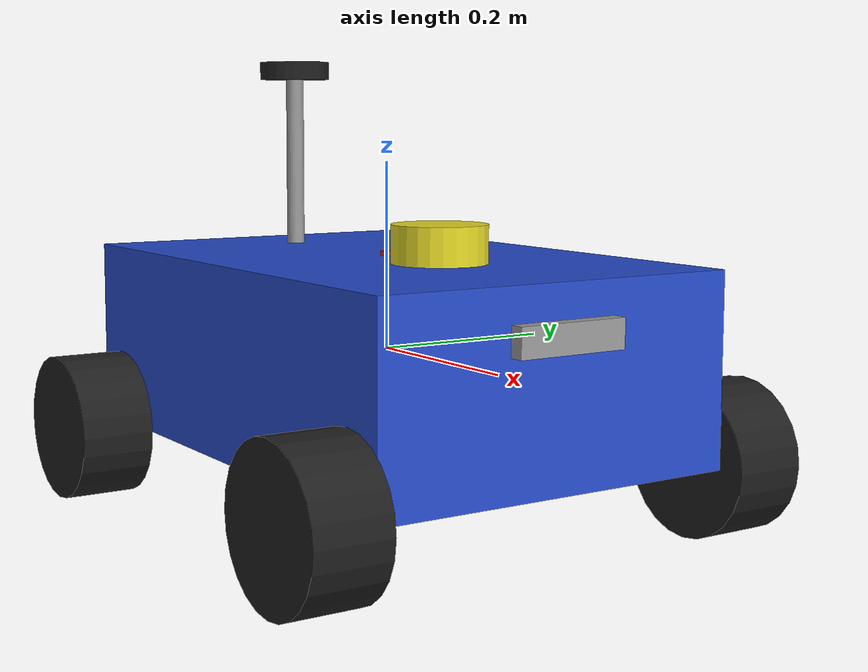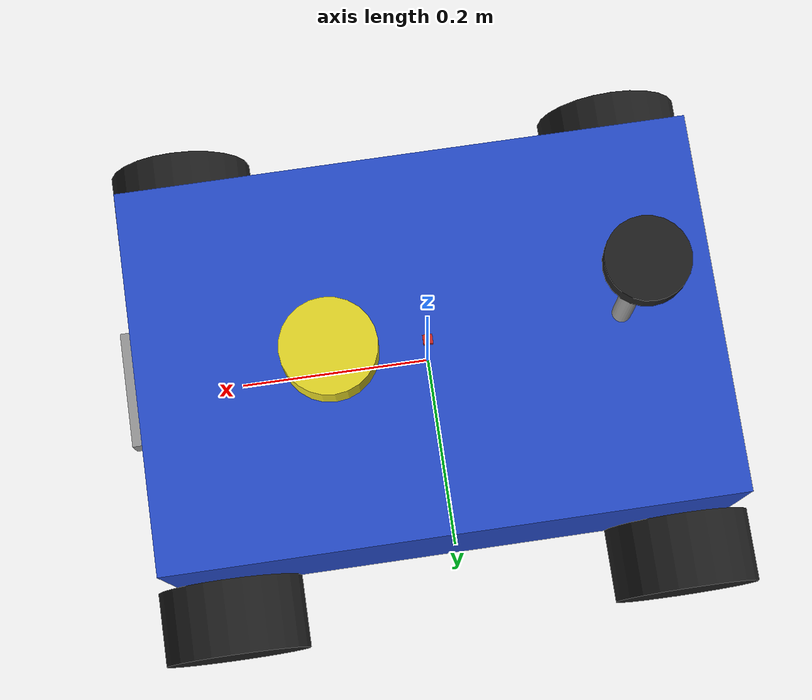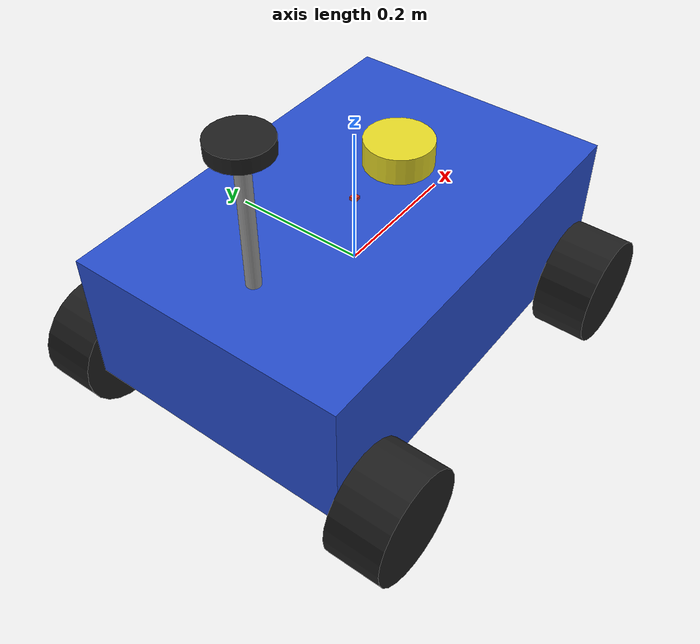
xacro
<?xml version="1.0"?>
<robot name="simple_rover" xmlns:xacro="http://www.ros.org/wiki/xacro">

  <xacro:include filename="robot.gazebo.xacro" />

  <!--Body-->

    <link name="base_link">
      <visual>
        <geometry><box size="0.6 0.4 0.2"/></geometry>
      </visual>
      <collision>
        <geometry><box size="0.6 0.4 0.2"/></geometry>
      </collision>
      <inertial>
        <mass value="20"/>
        <origin xyz="0 0 0" rpy="0 0 0"/>
        <inertia ixx="0.333" ixy="0" ixz="0" iyy="0.666" iyz="0" izz="0.866"/>
      </inertial>
    </link>

  <!--FLW-->

    <link name="front_left_wheel">
      <visual>
        <origin xyz="0 0 0" rpy="1.5708 0 0"/>
        <geometry>
          <cylinder radius="0.08" length="0.08"/>
        </geometry>
      </visual>
      <collision>
        <origin xyz="0 0 0" rpy="1.5708 0 0"/>
        <geometry>
          <cylinder radius="0.08" length="0.08"/>
        </geometry>
      </collision>
      <inertial>
        <mass value="2"/>
        <inertia ixx="0.0042" ixy="0" ixz="0" iyy="0.0042" iyz="0" izz="0.0064"/>
      </inertial>
    </link>

    <joint name="front_left_joint" type="continuous">
      <parent link="base_link"/>
      <child link="front_left_wheel"/>
      <origin xyz="0.25 0.24 -0.1" rpy="0 0 0"/>
      <axis xyz="0 1 0"/>
    </joint>

  <!--FRW-->

    <link name="front_right_wheel">
      <visual>
        <origin xyz="0 0 0" rpy="1.5708 0 0"/>
        <geometry>
          <cylinder radius="0.08" length="0.08"/>
        </geometry>
      </visual>
      <collision>
        <origin xyz="0 0 0" rpy="1.5708 0 0"/>
        <geometry>
          <cylinder radius="0.08" length="0.08"/>
        </geometry>
      </collision>
      <inertial>
        <mass value="2"/>
        <inertia ixx="0.0042" ixy="0" ixz="0" iyy="0.0042" iyz="0" izz="0.0064"/>
      </inertial>
    </link>

    <joint name="front_right_joint" type="continuous">
      <parent link="base_link"/>
      <child link="front_right_wheel"/>
      <origin xyz="0.25 -0.24 -0.1" rpy="0 0 0"/>
      <axis xyz="0 1 0"/>
    </joint>

  <!--RLW-->

    <link name="rear_left_wheel">
      <visual>
        <origin xyz="0 0 0" rpy="1.5708 0 0"/>
        <geometry>
          <cylinder radius="0.08" length="0.08"/>
        </geometry>
      </visual>
      <collision>
        <origin xyz="0 0 0" rpy="1.5708 0 0"/>
        <geometry>
          <cylinder radius="0.08" length="0.08"/>
        </geometry>
      </collision>
      <inertial>
        <mass value="2"/>
        <inertia ixx="0.0042" ixy="0" ixz="0" iyy="0.0042" iyz="0" izz="0.0064"/>
      </inertial>
    </link>

    <joint name="rear_left_joint" type="continuous">
      <parent link="base_link"/>
      <child link="rear_left_wheel"/>
      <origin xyz="-0.25 0.24 -0.1" rpy="0 0 0"/>
      <axis xyz="0 1 0"/>
    </joint>

  <!--RRW-->

    <link name="rear_right_wheel">
      <visual>
        <origin xyz="0 0 0" rpy="1.5708 0 0"/>
        <geometry>
          <cylinder radius="0.08" length="0.08"/>
        </geometry>
      </visual>
      <collision>
        <origin xyz="0 0 0" rpy="1.5708 0 0"/>
        <geometry>
          <cylinder radius="0.08" length="0.08"/>
        </geometry>
      </collision>
      <inertial>
        <mass value="2"/>
        <inertia ixx="0.0042" ixy="0" ixz="0" iyy="0.0042" iyz="0" izz="0.0064"/>
      </inertial>
    </link>

    <joint name="rear_right_joint" type="continuous">
      <parent link="base_link"/>
      <child link="rear_right_wheel"/>
      <origin xyz="-0.25 -0.24 -0.1" rpy="0 0 0"/>
      <axis xyz="0 1 0"/>
    </joint>

  <!--LiDAR-->

    <link name="laser_frame">
      <visual>
        <geometry>
          <cylinder radius="0.05" length="0.04"/>
        </geometry>
      </visual>
      <collision>
        <geometry>
          <cylinder radius="0.05" length="0.04"/>
        </geometry>
      </collision>
      <inertial>
        <mass value="0.1"/>
        <inertia ixx="0.00007" ixy="0" ixz="0" iyy="0.00007" iyz="0" izz="0.000125"/>
      </inertial>
    </link>

    <joint name="laser_joint" type="fixed">
      <parent link="base_link"/>
      <child link="laser_frame"/>
      <origin xyz="0.1 0 0.12" rpy="0 0 0"/>
    </joint>

  <!--StereoCam-->

    <link name="stereocamera_link">
      <visual>
        <geometry>
          <box size="0.03 0.12 0.03"/>
        </geometry>
      </visual>
      <collision>
        <geometry>
          <box size="0.03 0.12 0.03"/>
        </geometry>
      </collision>
      <inertial>
        <mass value="0.1"/>
        <inertia ixx="0.0001" ixy="0" ixz="0" iyy="0.0001" iyz="0" izz="0.0001"/>
      </inertial>
    </link>

    <joint name="stereocamera_joint" type="fixed">
      <parent link="base_link"/>
      <child link="stereocamera_link"/>
      <origin xyz="0.3 0 0.05" rpy="0 0 0"/>
    </joint>

    <link name="stereocamera_link_optical"></link>

    <joint name="stereocamera_optical_joint" type="fixed">
      <parent link="stereocamera_link"/>
      <child link="stereocamera_link_optical"/>
      <origin xyz="0 0 0" rpy="-1.5708 0 -1.5708"/>
    </joint>

<link name="imu_link">
    <visual>
      <geometry><box size="0.01 0.01 0.01"/></geometry>
    </visual>
    <collision>
      <geometry><box size="0.01 0.01 0.01"/></geometry>
    </collision>
    <inertial>
      <mass value="0.1"/>
      <inertia ixx="0.0001" ixy="0" ixz="0" iyy="0.0001" iyz="0" izz="0.0001"/>
    </inertial>
  </link>

  <joint name="imu_joint" type="fixed">
    <parent link="base_link"/>
    <child link="imu_link"/>
    <origin xyz="0 0 0.1" rpy="0 0 0"/>
  </joint>

  <link name="gps_rod">
    <visual>
      <geometry><cylinder radius="0.01" length="0.2"/></geometry>
    </visual>
    <collision>
      <geometry><cylinder radius="0.01" length="0.2"/></geometry>
    </collision>
    <inertial>
      <mass value="0.1"/>
      <inertia ixx="0.0001" ixy="0" ixz="0" iyy="0.0001" iyz="0" izz="0.0001"/>
    </inertial>
  </link>

  <joint name="gps_rod_joint" type="fixed">
    <parent link="base_link"/>
    <child link="gps_rod"/>
    <origin xyz="-0.2 0 0.2" rpy="0 0 0"/>
  </joint>

  <link name="gps_link">
    <visual>
      <geometry><cylinder radius="0.04" length="0.02"/></geometry>
    </visual>
    <collision>
      <geometry><cylinder radius="0.04" length="0.02"/></geometry>
    </collision>
    <inertial>
      <mass value="0.1"/>
      <inertia ixx="0.0001" ixy="0" ixz="0" iyy="0.0001" iyz="0" izz="0.0001"/>
    </inertial>
  </link>

  <joint name="gps_joint" type="fixed">
    <parent link="gps_rod"/>
    <child link="gps_link"/>
    <origin xyz="0 0 0.1" rpy="0 0 0"/>
  </joint>

</robot>
